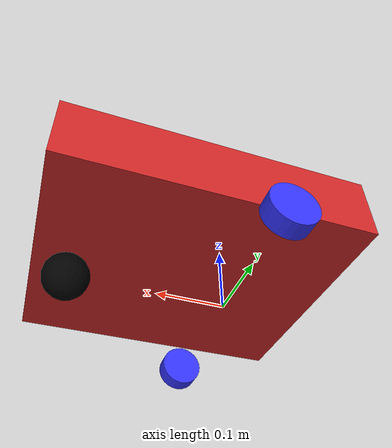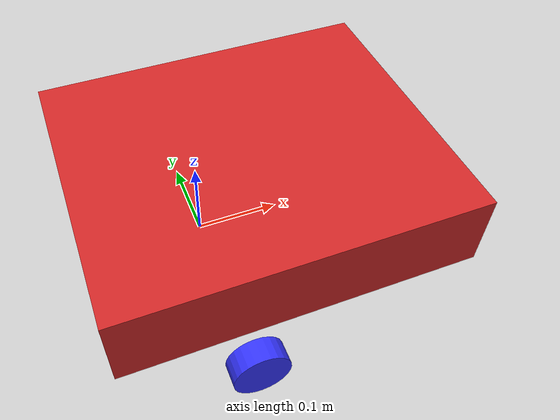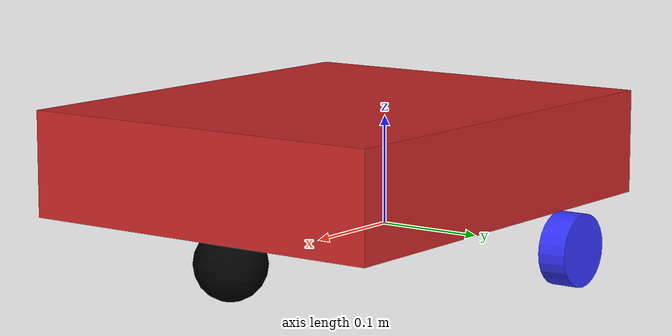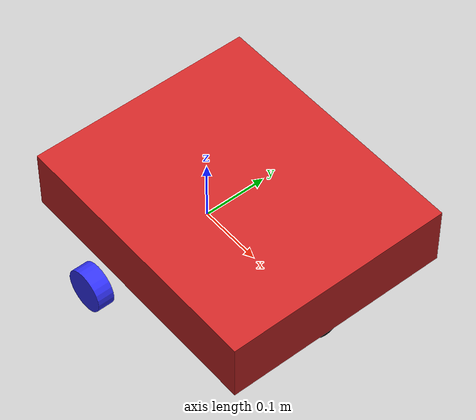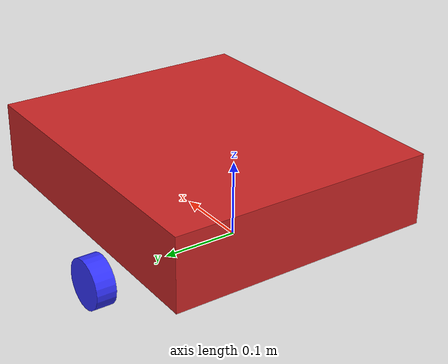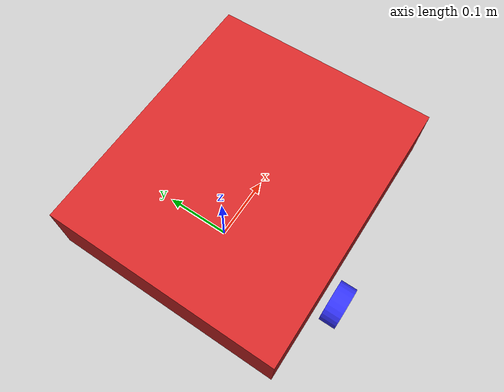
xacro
<?xml version="1.0"?>
<robot xmlns:xacro="http://www.ros.org/wiki/xacro"  name="robot">

    <xacro:include filename="inertial_macros.xacro"/>

    <material name ="white">
        <color rgba="1 1 1 1"/>
    </material>

    <material name = "Orange">
        <color rgba="1 0.3 0.1 1"/>
    </material>

    <material name = "blue">
        <color rgba="0.2 0.2 1 1"/>
    </material>

    <material name ="black">
        <color rgba ="0 0 0 1"/>
    </material>
    <!-- Base Link -->
    <link name="base_link">

    </link>

    <!--Base Footprint Link-->

    <joint name="base_footprint_joint" type="fixed">
        <origin xyz="0.0 0.0 0.0" rpy="0.0 0.0 0.0"/>
        <parent link="base_link"/>
        <child link="base_footprint"/>
    </joint>

    <link name="base_footprint">
    </link>

    <!-- Chassis joint  -->

    <joint name ="chassis_joint" type="fixed">
        <parent link="base_link"/>
        <child link="chassis"/>
        <origin xyz = "-0.1 0 0"/>
    </joint>

    <!-- Chassis Link -->
    <link name= "chassis">
        <visual>
            <origin xyz="0.165 0 0.075"/>
            <geometry>
                <box size="0.418 0.352 0.095"/>
                <material name ="white"/>
            </geometry>
        </visual>
        <collision>
            <origin xyz="0.15 0 0.075"/>
            <geometry>
                <box size="0.418 0.352 0.95"/>
                <material name ="white"/>
            </geometry>
        </collision>
        <xacro:inertial_box mass="0.5" x="0.3" y="0.3" z="0.15">
            <origin xyz="0.15 0 0.075" rpy="0 0 0"/>
        </xacro:inertial_box>

    </link>

    <gazebo reference="chassis">
        <material>Gazebo/Red</material>
    </gazebo>

    <!-- Left Wheel Link -->

    <joint name="left_wheel_joint" type="continuous">
        <origin xyz="0 0.200 0" rpy="-${pi/2} 0.0 0.0"/>
        <parent link="base_link"/>
        <child link="left_wheel"/>
        <axis xyz="0.0 0.0 1"/>
    </joint>

    <link name="left_wheel">
        <visual name="">
            <origin xyz="0.0 0.0 0.0" rpy="0.0 0.0 0.0"/>
            <geometry>
                <cylinder radius="0.0325" length="0.026"/>
            </geometry>
            <material name="blue"/>
        </visual>
        <collision>
            <origin xyz="0.0 0.0 0.0" rpy="0.0 0.0 0.0"/>
            <geometry>
                <cylinder radius="0.0325" length="0.026"/>
            </geometry>
        </collision>
        <xacro:inertial_cylinder mass="0.1" length="0.026" radius="0.0325">
            <origin xyz="0 0 0" rpy="0 0 0"/>
        </xacro:inertial_cylinder>
    </link>

    <gazebo reference="left_wheel">
        <material>Gazebo/Blue</material>
    </gazebo>

    <!-- Right Wheel Link -->

    <joint name="right_wheel_joint" type="continuous">
        <origin xyz="0 -0.200 0" rpy="${pi/2} 0.0 0.0"/>
        <parent link="base_link"/>
        <child link="right_wheel"/>
        <axis xyz="0.0 0.0 -1"/>
    </joint>

    <link name="right_wheel">
        <visual name="">
            <origin xyz="0.0 0.0 0.0" rpy="0.0 0.0 0.0"/>
            <geometry>
                <cylinder radius="0.0325" length="0.026"/>
            </geometry>
            <material name="blue"/>
        </visual>
        <collision>
            <origin xyz="0.0 0.0 0.0" rpy="0.0 0.0 0.0"/>
            <geometry>
                <cylinder radius="0.05" length="0.04"/>
            </geometry>
        </collision>
        <xacro:inertial_cylinder mass="0.1" length="0.026" radius="0.0325">
            <origin xyz="0 0 0" rpy="0 0 0"/>
        </xacro:inertial_cylinder>
    </link>

    <gazebo reference="right_wheel">
        <material>Gazebo/Blue</material>
    </gazebo>

    <!-- Caster wheel -->

    <joint name="caster_wheel_joint" type="fixed">
        <origin xyz="0.325 0.0 0.0" />
        <parent link="chassis"/>
        <child link="caster_wheel"/>
    </joint>

    <link name="caster_wheel">

        <visual name="">
            <geometry>
                    <sphere radius="0.0325"/>
            </geometry>
            <material name="black"/>
        </visual>
        <collision>
            <geometry>
                    <sphere radius="0.0325"/>
            </geometry>
        </collision>
        <xacro:inertial_sphere mass="0.1" radius="0.0325">
            <origin xyz="0 0 0" rpy="0 0 0"/>
        </xacro:inertial_sphere>
    </link>

    <gazebo reference="caster_wheel">
        <material>Gazebo/Black</material>
        <mu1 value="0.0001"/>
        <mu2 value="0.0001"/>
    </gazebo>

</robot>
